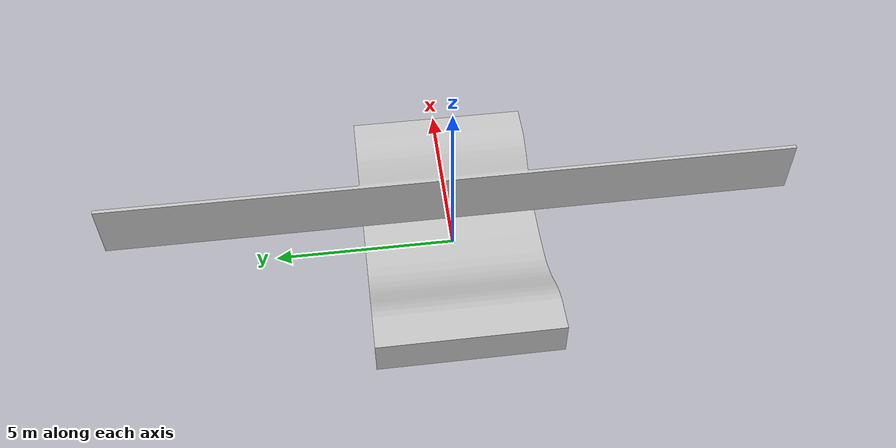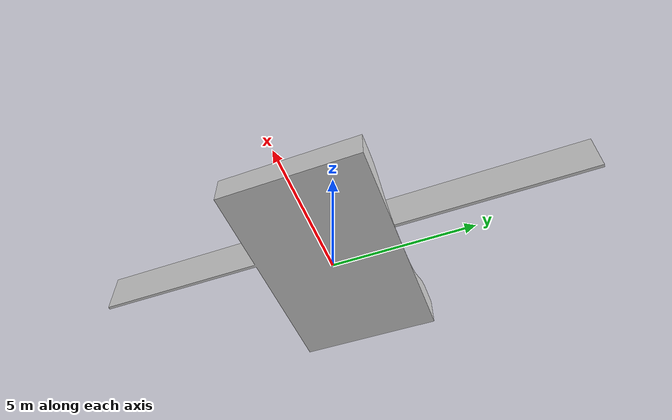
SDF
<?xml version="1.0" ?>
<sdf version="1.6">
  <model name="study_track_underpass">
    <static>true</static>

    <link name="study_track_underpass_link">
      <pose>0 0 0 0 0 0</pose>
      <collision name="collision">
        <geometry>
          <mesh>
            <uri>model://study_track_underpass/meshes/study_track_underpass.stl</uri>
            <scale>1 1 1</scale>
          </mesh>
        </geometry>
      </collision>
      <visual name="visual">
        <geometry>
          <mesh>
             <uri>model://study_track_underpass/meshes/study_track_underpass.stl</uri>
            <scale>1 1 1</scale>
          </mesh>
        </geometry>
        <material>
          <ambient>0.7 0.7 0.7 1</ambient>
          <diffuse>0.8 0.8 0.8 1</diffuse>
          <specular>0.1 0.1 0.1 1</specular>
          <emissive>0 0 0 0</emissive>
        </material>
      </visual>
    </link>

  </model>
</sdf>
